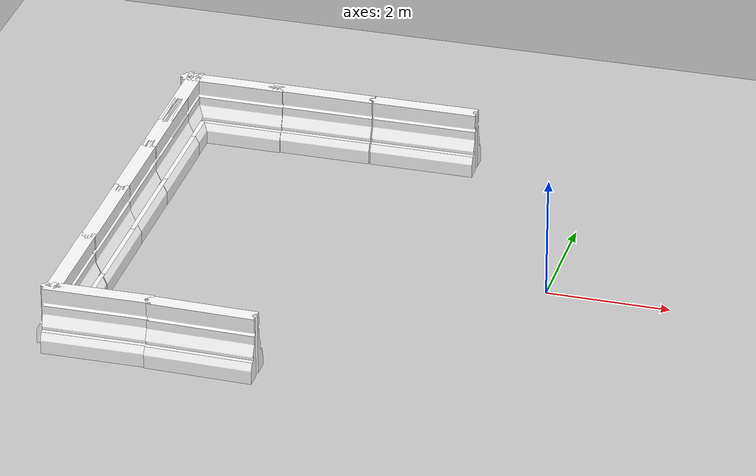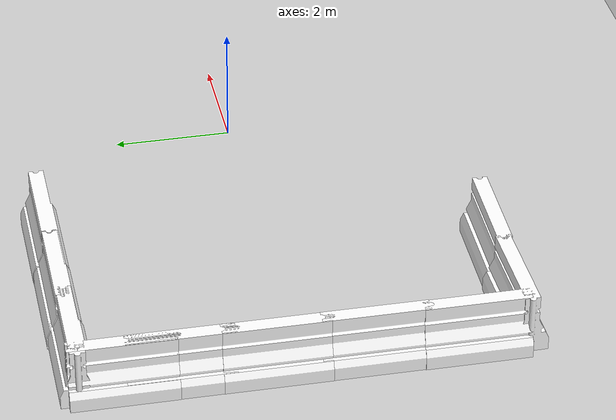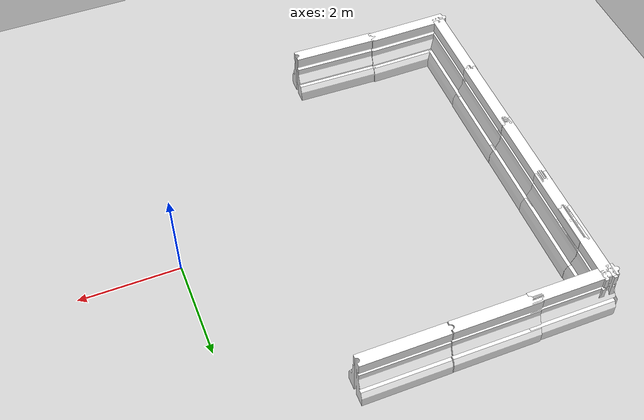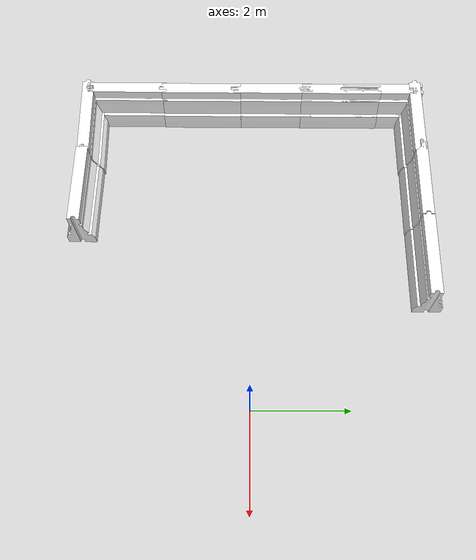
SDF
<sdf version="1.4">
 <world name="default">
  <model name="ground_plane">
   <static>1</static>
   <link name="link">
    <collision name="collision">
     <geometry><plane><normal>0 0 1</normal><size>100 100</size></plane></geometry>
     <surface><friction><ode><mu>100</mu><mu2>50</mu2></ode></friction></surface>
    </collision>
    <visual name="visual">
     <cast_shadows>0</cast_shadows>
     <geometry><plane><normal>0 0 1</normal><size>100 100</size></plane></geometry>
     <material>
      <script><uri>file://media/materials/scripts/gazebo.material</uri><name>Gazebo/Grey</name></script>
     </material>
    </visual>
    <velocity_decay><linear>0</linear><angular>0</angular></velocity_decay>
   </link>
  </model>
  <model name="drc_practice_white_jersey_barrier_4">
   <static>1</static>
   <link name="link">
    <visual name="visual">
     <geometry>
      <mesh><uri>model://drc_practice_white_jersey_barrier/meshes/jersey_barrier.dae</uri></mesh>
     </geometry>
    </visual>
    <collision name="collision">
     <geometry>
      <mesh><uri>model://drc_practice_white_jersey_barrier/meshes/jersey_barrier.dae</uri></mesh>
     </geometry>
    </collision>
    <velocity_decay><linear>0</linear><angular>0</angular></velocity_decay>
   </link>
   <pose>-6.24105 -3.57209 0 0 0 -1.55088</pose>
  </model>
  <model name="drc_practice_white_jersey_barrier_7">
   <static>1</static>
   <link name="link">
    <visual name="visual">
     <geometry>
      <mesh><uri>model://drc_practice_white_jersey_barrier/meshes/jersey_barrier.dae</uri></mesh>
     </geometry>
    </visual>
    <collision name="collision">
     <geometry>
      <mesh><uri>model://drc_practice_white_jersey_barrier/meshes/jersey_barrier.dae</uri></mesh>
     </geometry>
    </collision>
    <velocity_decay><linear>0</linear><angular>0</angular></velocity_decay>
   </link>
   <pose>-4.56306 -3.59459 0 0 0 -1.58363</pose>
  </model>
  <model name="drc_practice_white_jersey_barrier_8">
   <static>1</static>
   <link name="link">
    <visual name="visual">
     <geometry>
      <mesh><uri>model://drc_practice_white_jersey_barrier/meshes/jersey_barrier.dae</uri></mesh>
     </geometry>
    </visual>
    <collision name="collision">
     <geometry>
      <mesh><uri>model://drc_practice_white_jersey_barrier/meshes/jersey_barrier.dae</uri></mesh>
     </geometry>
    </collision>
    <velocity_decay><linear>0</linear><angular>0</angular></velocity_decay>
   </link>
   <pose>-6.94248 0.491028 0 0 -0 0</pose>
  </model>
  <model name="drc_practice_white_jersey_barrier_9">
   <static>1</static>
   <link name="link">
    <visual name="visual">
     <geometry>
      <mesh><uri>model://drc_practice_white_jersey_barrier/meshes/jersey_barrier.dae</uri></mesh>
     </geometry>
    </visual>
    <collision name="collision">
     <geometry>
      <mesh><uri>model://drc_practice_white_jersey_barrier/meshes/jersey_barrier.dae</uri></mesh>
     </geometry>
    </collision>
    <velocity_decay><linear>0</linear><angular>0</angular></velocity_decay>
   </link>
   <pose>-6.94519 -1.09145 0 0 -0 0</pose>
  </model>
  <model name="drc_practice_white_jersey_barrier_10">
   <static>1</static>
   <link name="link">
    <visual name="visual">
     <geometry>
      <mesh><uri>model://drc_practice_white_jersey_barrier/meshes/jersey_barrier.dae</uri></mesh>
     </geometry>
    </visual>
    <collision name="collision">
     <geometry>
      <mesh><uri>model://drc_practice_white_jersey_barrier/meshes/jersey_barrier.dae</uri></mesh>
     </geometry>
    </collision>
    <velocity_decay><linear>0</linear><angular>0</angular></velocity_decay>
   </link>
   <pose>-6.96428 -2.72575 0 0 -0 0</pose>
  </model>
  <model name="drc_practice_white_jersey_barrier_13">
   <static>1</static>
   <link name="link">
    <visual name="visual">
     <geometry>
      <mesh><uri>model://drc_practice_white_jersey_barrier/meshes/jersey_barrier.dae</uri></mesh>
     </geometry>
    </visual>
    <collision name="collision">
     <geometry>
      <mesh><uri>model://drc_practice_white_jersey_barrier/meshes/jersey_barrier.dae</uri></mesh>
     </geometry>
    </collision>
    <velocity_decay><linear>0</linear><angular>0</angular></velocity_decay>
   </link>
   <pose>-6.93224 1.99821 0 0 -0 0</pose>
  </model>
  <model name="drc_practice_white_jersey_barrier_14">
   <static>1</static>
   <link name="link">
    <visual name="visual">
     <geometry>
      <mesh><uri>model://drc_practice_white_jersey_barrier/meshes/jersey_barrier.dae</uri></mesh>
     </geometry>
    </visual>
    <collision name="collision">
     <geometry>
      <mesh><uri>model://drc_practice_white_jersey_barrier/meshes/jersey_barrier.dae</uri></mesh>
     </geometry>
    </collision>
    <velocity_decay><linear>0</linear><angular>0</angular></velocity_decay>
   </link>
   <pose>-6.93448 2.91348 0 0 -0 0</pose>
  </model>
  <model name="drc_practice_white_jersey_barrier_15">
   <static>1</static>
   <link name="link">
    <visual name="visual">
     <geometry>
      <mesh><uri>model://drc_practice_white_jersey_barrier/meshes/jersey_barrier.dae</uri></mesh>
     </geometry>
    </visual>
    <collision name="collision">
     <geometry>
      <mesh><uri>model://drc_practice_white_jersey_barrier/meshes/jersey_barrier.dae</uri></mesh>
     </geometry>
    </collision>
    <velocity_decay><linear>0</linear><angular>0</angular></velocity_decay>
   </link>
   <pose>-6.23815 3.61666 0 0 0 -1.56543</pose>
  </model>
  <model name="drc_practice_white_jersey_barrier_16">
   <static>1</static>
   <link name="link">
    <visual name="visual">
     <geometry>
      <mesh><uri>model://drc_practice_white_jersey_barrier/meshes/jersey_barrier.dae</uri></mesh>
     </geometry>
    </visual>
    <collision name="collision">
     <geometry>
      <mesh><uri>model://drc_practice_white_jersey_barrier/meshes/jersey_barrier.dae</uri></mesh>
     </geometry>
    </collision>
    <velocity_decay><linear>0</linear><angular>0</angular></velocity_decay>
   </link>
   <pose>-4.70843 3.6351 0 0 0 -1.56577</pose>
  </model>
  <model name="drc_practice_white_jersey_barrier_17">
   <static>1</static>
   <link name="link">
    <visual name="visual">
     <geometry>
      <mesh><uri>model://drc_practice_white_jersey_barrier/meshes/jersey_barrier.dae</uri></mesh>
     </geometry>
    </visual>
    <collision name="collision">
     <geometry>
      <mesh><uri>model://drc_practice_white_jersey_barrier/meshes/jersey_barrier.dae</uri></mesh>
     </geometry>
    </collision>
    <velocity_decay><linear>0</linear><angular>0</angular></velocity_decay>
   </link>
   <pose>-2.94915 3.64288 0 0 0 -1.56417</pose>
  </model>
 </world>
</sdf>
